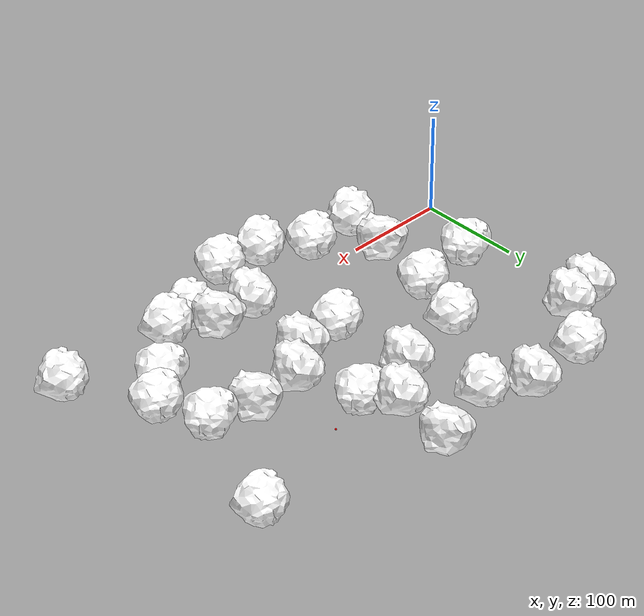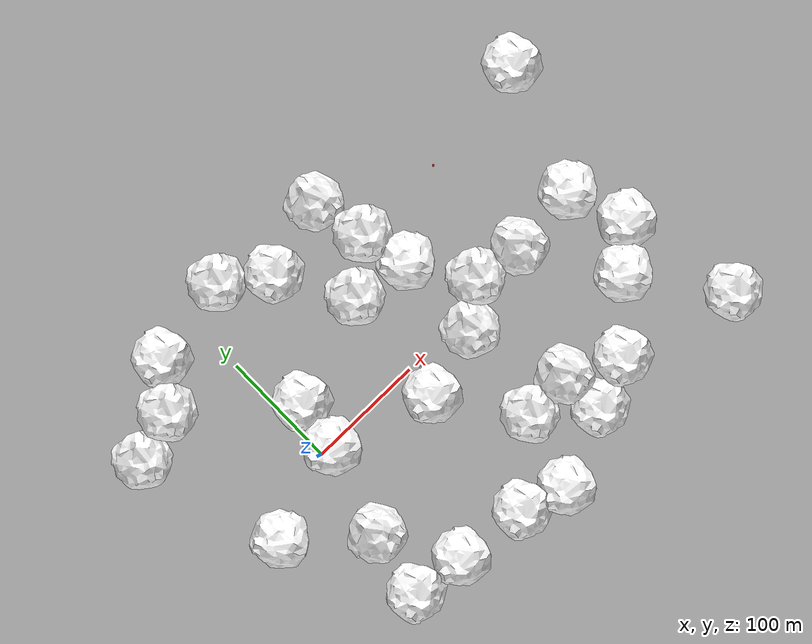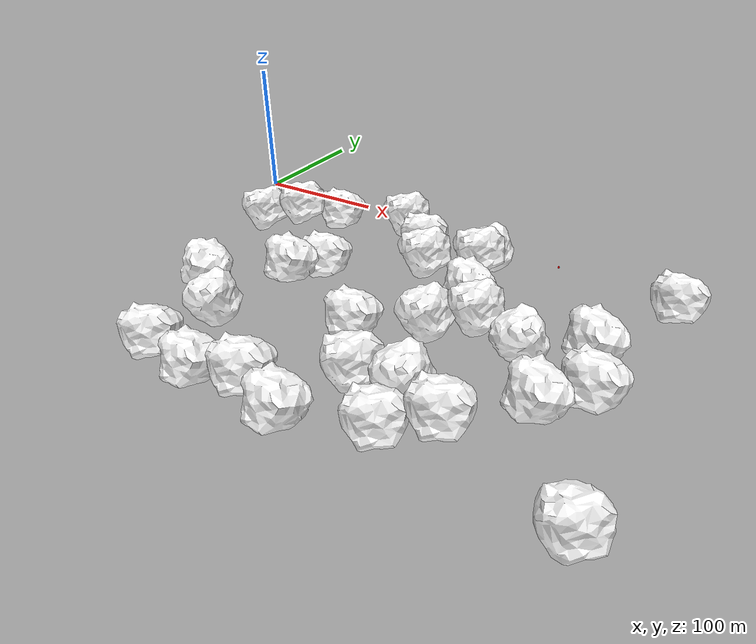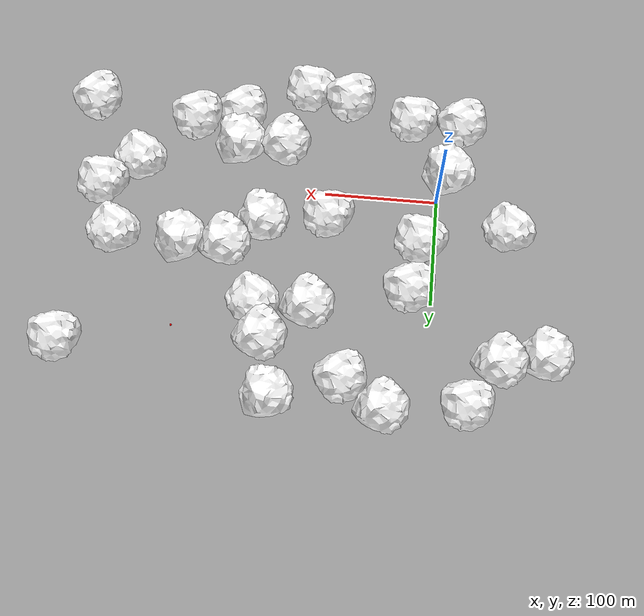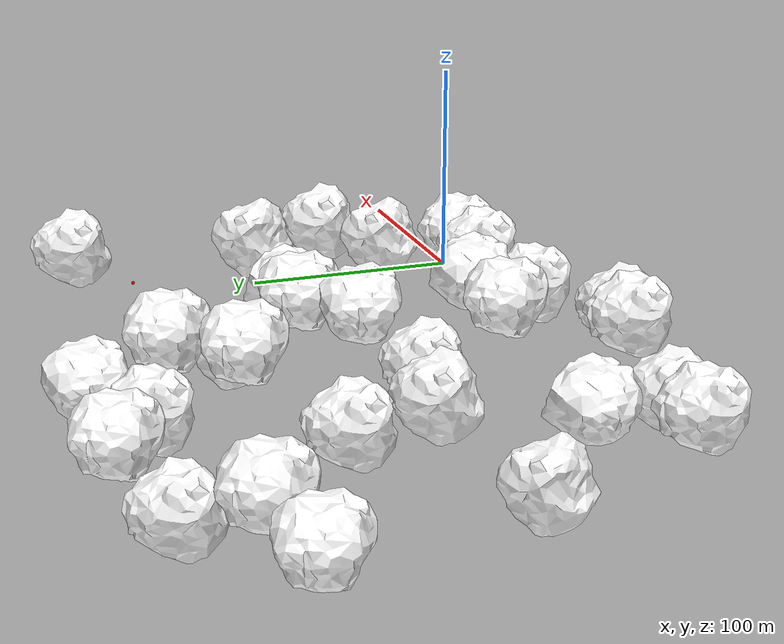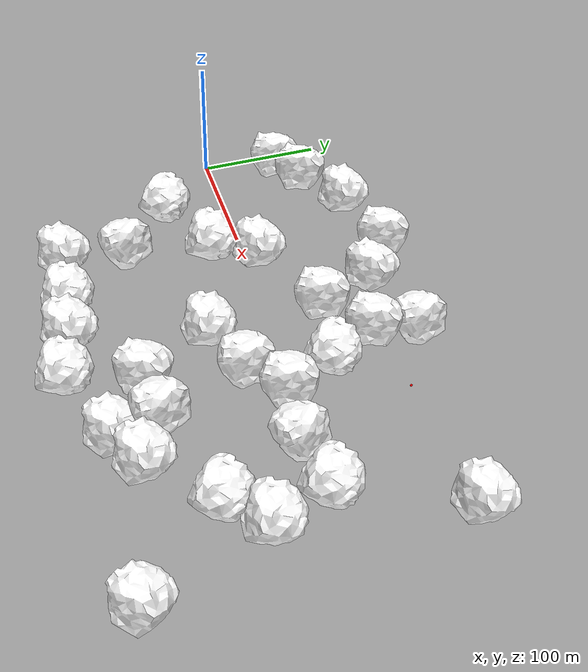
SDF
<sdf version="1.6">
 <world name="empty_environment">
  <scene><ambient>0.1 0.2 0.3 1.0</ambient><background>0.0 0.1 0.3</background></scene>
  <physics name="1ms" type="ode">
   <max_step_size>0.001</max_step_size>
   <real_time_factor>1.0</real_time_factor>
  </physics>
  <light type="directional" name="sun">
   <pose>0 0 10 0 0 0</pose>
   <diffuse>1 1 1 1</diffuse>
   <specular>0.5 0.5 0.5 1</specular>
   <attenuation>
    <range>1000</range>
    <constant>0.9</constant>
    <linear>0.01</linear>
    <quadratic>0.001</quadratic>
   </attenuation>
   <direction>-0.5 0.1 -0.9</direction>
  </light>
  <plugin filename="gz-sim-physics-system" name="gz::sim::systems::Physics"/>
  <plugin filename="gz-sim-sensors-system" name="gz::sim::systems::Sensors">
   <render_engine>ogre2</render_engine>
  </plugin>
  <plugin filename="gz-sim-buoyancy-system" name="gz::sim::systems::Buoyancy">
   <graded_buoyancy>
    <default_density>1025</default_density>
    <density_change><above_depth>0</above_depth><density>1.125</density></density_change>
   </graded_buoyancy>
  </plugin>
  <plugin filename="gz-sim-user-commands-system" name="gz::sim::systems::UserCommands"/>
  <plugin filename="gz-sim-scene-broadcaster-system" name="gz::sim::systems::SceneBroadcaster"/>
  <plugin filename="gz-sim-contact-system" name="gz::sim::systems::Contact"/>
  <model name="target_marker">
   <static>true</static>
   <pose>233.48 110.47 -73.23 0 0 0</pose>
   <link name="link">
    <visual name="visual">
     <geometry><sphere><radius>1.0</radius></sphere></geometry>
     <material>
      <ambient>1.0 0.0 0.0 1.0</ambient>
      <diffuse>1.0 0.0 0.0 1.0</diffuse>
      <emissive>0.8 0.0 0.0 1.0</emissive>
     </material>
    </visual>
   </link>
  </model>
  <include>
   <name>rock_0</name>
   <uri>falling rock 1</uri>
   <pose>-77.40 -26.55 -92.53 0 0 0.09</pose>
   <static>true</static>
  </include>
  <include>
   <name>rock_1</name>
   <uri>falling rock 1</uri>
   <pose>127.62 -160.98 -81.75 0 0 0.62</pose>
   <static>true</static>
  </include>
  <include>
   <name>rock_2</name>
   <uri>falling rock 1</uri>
   <pose>147.02 -95.05 -77.76 0 0 1.85</pose>
   <static>true</static>
  </include>
  <include>
   <name>rock_3</name>
   <uri>falling rock 1</uri>
   <pose>-116.82 103.98 -89.49 0 0 2.19</pose>
   <static>true</static>
  </include>
  <include>
   <name>rock_4</name>
   <uri>falling rock 1</uri>
   <pose>-43.82 155.45 -95.68 0 0 1.06</pose>
   <static>true</static>
  </include>
  <include>
   <name>rock_5</name>
   <uri>falling rock 1</uri>
   <pose>-72.61 118.15 -77.82 0 0 1.90</pose>
   <static>true</static>
  </include>
  <include>
   <name>rock_6</name>
   <uri>falling rock 1</uri>
   <pose>237.57 12.32 -88.54 0 0 3.06</pose>
   <static>true</static>
  </include>
  <include>
   <name>rock_7</name>
   <uri>falling rock 1</uri>
   <pose>150.50 112.00 -76.46 0 0 1.94</pose>
   <static>true</static>
  </include>
  <include>
   <name>rock_8</name>
   <uri>falling rock 1</uri>
   <pose>162.90 69.55 -92.30 0 0 0.14</pose>
   <static>true</static>
  </include>
  <include>
   <name>rock_9</name>
   <uri>falling rock 1</uri>
   <pose>21.80 -142.87 -95.47 0 0 0.73</pose>
   <static>true</static>
  </include>
  <include>
   <name>rock_10</name>
   <uri>falling rock 1</uri>
   <pose>16.21 46.13 -88.75 0 0 1.15</pose>
   <static>true</static>
  </include>
  <include>
   <name>rock_11</name>
   <uri>falling rock 1</uri>
   <pose>-17.34 -79.23 -81.80 0 0 2.94</pose>
   <static>true</static>
  </include>
  <include>
   <name>rock_12</name>
   <uri>falling rock 1</uri>
   <pose>237.27 -114.44 -73.26 0 0 1.19</pose>
   <static>true</static>
  </include>
  <include>
   <name>rock_13</name>
   <uri>falling rock 1</uri>
   <pose>193.60 19.36 -76.93 0 0 2.15</pose>
   <static>true</static>
  </include>
  <include>
   <name>rock_14</name>
   <uri>falling rock 1</uri>
   <pose>342.03 127.96 -81.61 0 0 0.99</pose>
   <static>true</static>
  </include>
  <include>
   <name>rock_15</name>
   <uri>falling rock 1</uri>
   <pose>73.86 140.95 -91.38 0 0 1.44</pose>
   <static>true</static>
  </include>
  <include>
   <name>rock_16</name>
   <uri>falling rock 1</uri>
   <pose>319.93 -34.20 -73.06 0 0 0.69</pose>
   <static>true</static>
  </include>
  <include>
   <name>rock_17</name>
   <uri>falling rock 1</uri>
   <pose>86.86 -148.40 -73.10 0 0 1.20</pose>
   <static>true</static>
  </include>
  <include>
   <name>rock_18</name>
   <uri>falling rock 1</uri>
   <pose>139.27 160.17 -97.71 0 0 2.70</pose>
   <static>true</static>
  </include>
  <include>
   <name>rock_19</name>
   <uri>falling rock 1</uri>
   <pose>194.07 -132.07 -86.66 0 0 1.37</pose>
   <static>true</static>
  </include>
  <include>
   <name>rock_20</name>
   <uri>falling rock 1</uri>
   <pose>9.06 0.20 -75.18 0 0 0.56</pose>
   <static>true</static>
  </include>
  <include>
   <name>rock_21</name>
   <uri>falling rock 1</uri>
   <pose>287.52 -65.45 -76.05 0 0 0.18</pose>
   <static>true</static>
  </include>
  <include>
   <name>rock_22</name>
   <uri>falling rock 1</uri>
   <pose>344.01 -140.88 -96.27 0 0 1.53</pose>
   <static>true</static>
  </include>
  <include>
   <name>rock_23</name>
   <uri>falling rock 1</uri>
   <pose>32.74 168.35 -87.05 0 0 2.04</pose>
   <static>true</static>
  </include>
  <include>
   <name>rock_24</name>
   <uri>falling rock 1</uri>
   <pose>189.24 -92.16 -76.51 0 0 2.84</pose>
   <static>true</static>
  </include>
  <include>
   <name>rock_25</name>
   <uri>falling rock 1</uri>
   <pose>159.81 -9.29 -77.81 0 0 2.46</pose>
   <static>true</static>
  </include>
  <include>
   <name>rock_26</name>
   <uri>falling rock 1</uri>
   <pose>-26.70 -137.04 -87.41 0 0 1.35</pose>
   <static>true</static>
  </include>
  <include>
   <name>rock_27</name>
   <uri>falling rock 1</uri>
   <pose>108.84 77.89 -73.40 0 0 2.11</pose>
   <static>true</static>
  </include>
  <include>
   <name>rock_28</name>
   <uri>falling rock 1</uri>
   <pose>99.82 -26.56 -91.75 0 0 0.87</pose>
   <static>true</static>
  </include>
  <include>
   <name>rock_29</name>
   <uri>falling rock 1</uri>
   <pose>302.06 17.11 -73.02 0 0 0.16</pose>
   <static>true</static>
  </include>
  <model name="sea_floor_collision">
   <static>true</static>
   <pose>0 0 -98 0 0 0</pose>
   <link name="link">
    <collision name="collision"><geometry><box><size>2000 2000 1</size></box></geometry></collision>
   </link>
  </model>
 </world>
</sdf>

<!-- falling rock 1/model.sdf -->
<sdf version="1.6">
    <model name="falling_rock1">
        <link name="base_link">
            <inertial>
                <pose>-0.056101 0.007340 0.020250 0 0 0</pose>
                <mass>2569.46</mass>
                <inertia>
                    <ixx>466.314</ixx>
                    <ixy>6.554</ixy>
                    <ixz>-0.846</ixz>
                    <iyy>479.238</iyy>
                    <iyz>-5.226</iyz>
                    <izz>499.184</izz>
                </inertia>
            </inertial>
            <collision name="collision">
                <geometry>
                    <mesh>
                        <scale>35 35 35</scale>
            <uri>meshes/FallingRock01_Collider.dae</uri>
                    </mesh>
                </geometry>
            </collision>
            <visual name="visual">
                <geometry>
                    <mesh>
                        <scale>35 35 35</scale>
            <uri>meshes/FallingRock01.dae</uri>
                    </mesh>
                </geometry>
                <material>
                    <diffuse>1.0 1.0 1.0</diffuse>
                    <specular>1.0 1.0 1.0</specular>
                    <pbr>
                        <metal>
                            <albedo_map>https://fuel.gazebosim.org/1.0/openrobotics/models/falling rock 1/6/files/materials/textures/FallingRocks_Albedo.jpg</albedo_map>
                            <normal_map>https://fuel.gazebosim.org/1.0/openrobotics/models/falling rock 1/6/files/materials/textures/FallingRocks_Normal.jpg</normal_map>
                            <roughness_map>https://fuel.gazebosim.org/1.0/openrobotics/models/falling rock 1/6/files/materials/textures/FallingRocks_Roughness.jpg</roughness_map>
                        </metal>
                    </pbr>
                    <!-- fallback to script if no PBR support-->
                    <script>
                        <uri>https://fuel.gazebosim.org/1.0/openrobotics/models/falling rock 1/6/files/materials/scripts</uri>
                        <uri>https://fuel.gazebosim.org/1.0/openrobotics/models/falling rock 1/6/files/materials/textures</uri>
                        <name>FallingRocks/FallingRocks_Diffuse</name>
                    </script>
                </material>
            </visual>
        </link>
    </model>
</sdf>
